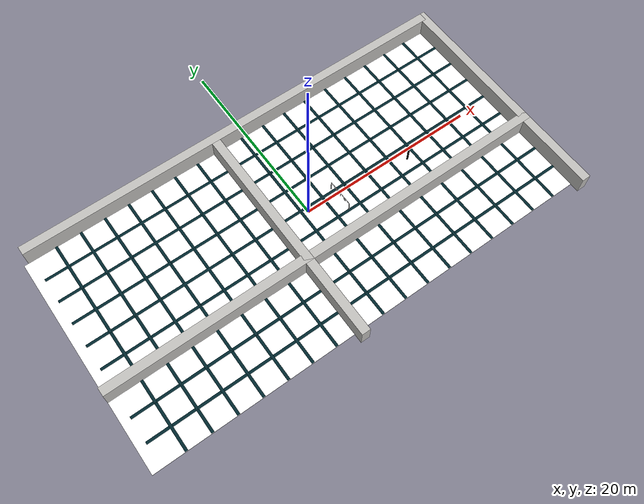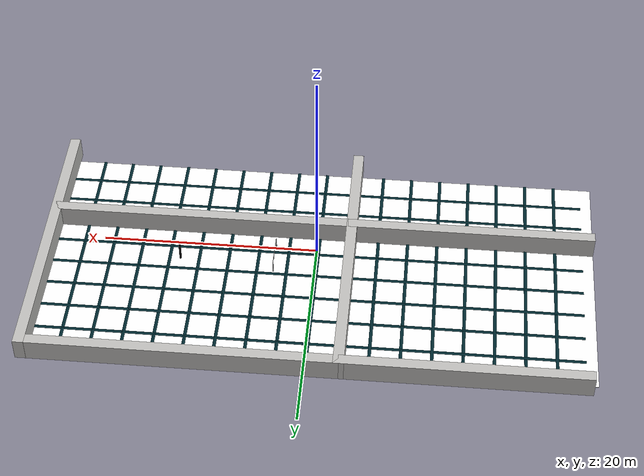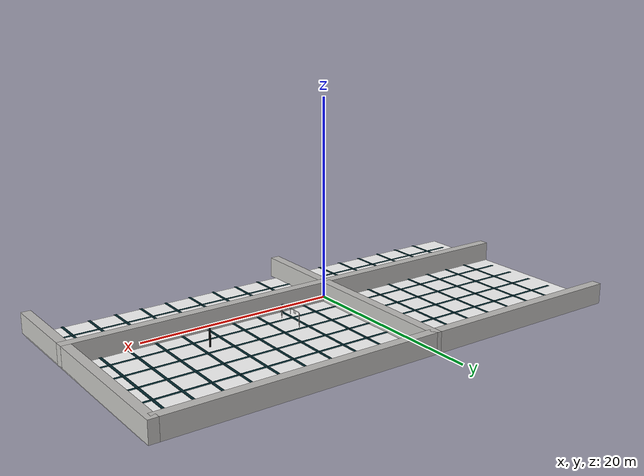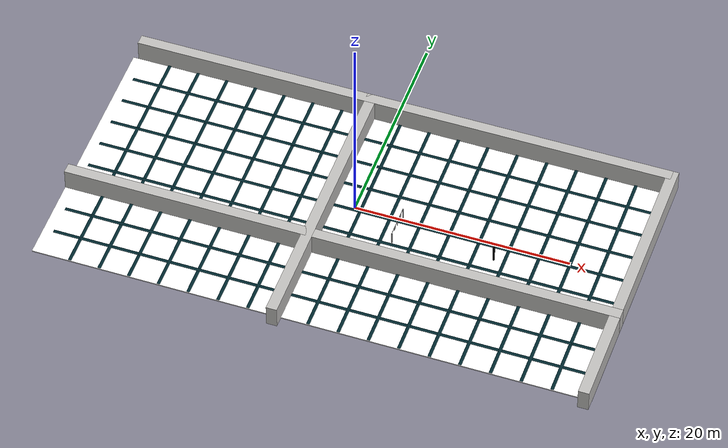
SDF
<?xml version="1.0" ?>
<sdf version="1.6">
  <world name="prequal_world">

    <!-- Configure the scene -->
    <scene>
      <!-- For turquoise ambient -->
      <ambient>0.0 1 1</ambient>
      <background>0.0 0.7 0.8</background>
    </scene>

    <!-- Configure the world physics -->
    <physics name="1ms" type="bullet">
      <max_step_size>0.001</max_step_size>
      <real_time_factor>1.0</real_time_factor>
    </physics>
    <plugin
      filename="gz-sim-physics-system"
      name="gz::sim::systems::Physics">
    </plugin>
    <plugin
      filename="gz-sim-sensors-system"
      name="gz::sim::systems::Sensors">
      <render_engine>ogre2</render_engine>
    </plugin>
    <plugin
      filename="gz-sim-user-commands-system"
      name="gz::sim::systems::UserCommands">
    </plugin>
    <plugin
      filename="gz-sim-scene-broadcaster-system"
      name="gz::sim::systems::SceneBroadcaster">
    </plugin>
    <plugin
      filename="gz-sim-buoyancy-system"
      name="gz::sim::systems::Buoyancy">
      <uniform_fluid_density>1025</uniform_fluid_density>
    </plugin>
    <plugin filename="gz-sim-imu-system"
            name="gz::sim::systems::Imu">
    </plugin>
    <plugin
      filename="gz-sim-air-pressure-system"
      name="gz::sim::systems::AirPressure">
    </plugin>

    <!-- Configure the GUI -->
    <gui>
      <!-- For some reason this is required to get the GUI to render the scene ambient/background -->
      <plugin filename="MinimalScene" name="3D View">
        <gz-gui>
          <title>3D View</title>
          <property type="bool" key="showTitleBar">false</property>
          <property type="string" key="state">docked</property>
        </gz-gui>

        <engine>ogre2</engine>
        <scene>scene</scene>
        <ambient>0.0 1.0 1.0</ambient>
        <background_color>0.0 0.7 0.8</background_color>
      </plugin>

      <!-- Plugins that add functionality to the scene (these got removed when using the MinimalScene Plugin so we have to re-add them-->
      <plugin filename="EntityContextMenuPlugin" name="Entity context menu">
        <gz-gui>
          <property key="state" type="string">floating</property>
          <property key="width" type="double">5</property>
          <property key="height" type="double">5</property>
          <property key="showTitleBar" type="bool">false</property>
        </gz-gui>
      </plugin>
      <plugin filename="GzSceneManager" name="Scene Manager">
        <gz-gui>
          <property key="resizable" type="bool">false</property>
          <property key="width" type="double">5</property>
          <property key="height" type="double">5</property>
          <property key="state" type="string">floating</property>
          <property key="showTitleBar" type="bool">false</property>
        </gz-gui>
      </plugin>
      <plugin filename="InteractiveViewControl" name="Interactive view control">
        <gz-gui>
          <property key="resizable" type="bool">false</property>
          <property key="width" type="double">5</property>
          <property key="height" type="double">5</property>
          <property key="state" type="string">floating</property>
          <property key="showTitleBar" type="bool">false</property>
        </gz-gui>
      </plugin>
      <plugin filename="CameraTracking" name="Camera Tracking">
        <gz-gui>
          <property key="resizable" type="bool">false</property>
          <property key="width" type="double">5</property>
          <property key="height" type="double">5</property>
          <property key="state" type="string">floating</property>
          <property key="showTitleBar" type="bool">false</property>
        </gz-gui>
      </plugin>

      <plugin filename="Spawn" name="Spawn Entities">
        <gz-gui>
          <property key="resizable" type="bool">false</property>
          <property key="width" type="double">5</property>
          <property key="height" type="double">5</property>
          <property key="state" type="string">floating</property>
          <property key="showTitleBar" type="bool">false</property>
        </gz-gui>
      </plugin>

      <!-- World control -->
      <plugin filename="WorldControl" name="World control">
        <gz-gui>
          <title>World control</title>
          <property type="bool" key="showTitleBar">false</property>
          <property type="bool" key="resizable">false</property>
          <property type="double" key="height">72</property>
          <property type="double" key="z">1</property>

          <property type="string" key="state">floating</property>
          <anchors target="3D View">
            <line own="left" target="left"/>
            <line own="bottom" target="bottom"/>
          </anchors>
        </gz-gui>

        <play_pause>true</play_pause>
        <step>true</step>
        <start_paused>true</start_paused>
        <use_event>true</use_event>

      </plugin>

      <!-- World statistics -->
      <plugin filename="WorldStats" name="World stats">
        <gz-gui>
          <title>World stats</title>
          <property type="bool" key="showTitleBar">false</property>
          <property type="bool" key="resizable">false</property>
          <property type="double" key="height">110</property>
          <property type="double" key="width">290</property>
          <property type="double" key="z">1</property>

          <property type="string" key="state">floating</property>
          <anchors target="3D View">
            <line own="right" target="right"/>
            <line own="bottom" target="bottom"/>
          </anchors>
        </gz-gui>

        <sim_time>true</sim_time>
        <real_time>true</real_time>
        <real_time_factor>true</real_time_factor>
        <iterations>true</iterations>
      </plugin>

      <!-- Insert simple shapes -->
      <plugin filename="Shapes" name="Shapes">
        <gz-gui>
          <property key="resizable" type="bool">false</property>
          <property key="x" type="double">0</property>
          <property key="y" type="double">0</property>
          <property key="width" type="double">250</property>
          <property key="height" type="double">50</property>
          <property key="state" type="string">floating</property>
          <property key="showTitleBar" type="bool">false</property>
          <property key="cardBackground" type="string">#666666</property>
        </gz-gui>
      </plugin>

      <!-- Inspector -->
      <plugin filename="ComponentInspector" name="Component inspector">
        <gz-gui>
          <property type="string" key="state">docked</property>
        </gz-gui>
      </plugin>

      <!-- Entity tree -->
      <plugin filename="EntityTree" name="Entity tree">
        <gz-gui>
          <property type="string" key="state">docked</property>
        </gz-gui>
      </plugin>

      <!-- Translate/Rotate Tools -->
      <plugin filename="TransformControl" name="Transform control">
        <gz-gui>
          <property key="resizable" type="bool">false</property>
          <property key="x" type="double">0</property>
          <property key="y" type="double">50</property>
          <property key="width" type="double">250</property>
          <property key="height" type="double">50</property>
          <property key="state" type="string">floating</property>
          <property key="showTitleBar" type="bool">false</property>
          <property key="cardBackground" type="string">#777777</property>
        </gz-gui>
      </plugin>
    </gui>

    <!-- 3D MODELS -->

    <model name='long_wall_1'>
      <pose>0 -4 -1.0668 0 0 0</pose>
      <link name='box_link'>
        <inertial>
          <inertia>
            <ixx>0.16666</ixx>
            <ixy>0</ixy>
            <ixz>0</ixz>
            <iyy>0.16666</iyy>
            <iyz>0</iyz>
            <izz>0.16666</izz>
          </inertia>
          <mass>1</mass>
          <pose>0 0 0 0 0 0</pose>
        </inertial>
        <collision name='box_collision'>
          <geometry>
            <box>
              <size>52 1 2.1336</size>
            </box>
          </geometry>
          <surface>
            <friction>
              <bullet/>
            </friction>
            <bounce/>
            <contact/>
          </surface>
        </collision>
        <visual name='box_visual'>
          <geometry>
            <box>
              <size>52 1 2.1336</size>
            </box>
          </geometry>
          <material>
            <ambient>0.753, 0.749, 0.737 1</ambient>
            <diffuse>0.753, 0.749, 0.737 1</diffuse>
            <specular>0.753, 0.749, 0.737 1</specular>
          </material>
        </visual>
        <pose>0 0 0 0 0 0</pose>
        <enable_wind>false</enable_wind>
      </link>
      <static>true</static>
      <self_collide>false</self_collide>
    </model>
    <model name='long_wall_2'>
      <pose>0 13 -1.0668 0 0 0</pose>
      <link name='box_link'>
        <inertial>
          <inertia>
            <ixx>0.16666</ixx>
            <ixy>0</ixy>
            <ixz>0</ixz>
            <iyy>0.16666</iyy>
            <iyz>0</iyz>
            <izz>0.16666</izz>
          </inertia>
          <mass>1</mass>
          <pose>0 0 0 0 0 0</pose>
        </inertial>
        <collision name='box_collision'>
          <geometry>
            <box>
              <size>51 1 2.1336</size>
            </box>
          </geometry>
          <surface>
            <friction>
              <ode/>
            </friction>
            <bounce/>
            <contact/>
          </surface>
        </collision>
        <visual name='box_visual'>
          <geometry>
            <box>
              <size>51 1 2.1336</size>
            </box>
          </geometry>
          <material>
            <ambient>0.753, 0.749, 0.737 1</ambient>
            <diffuse>0.753, 0.749, 0.737 1</diffuse>
            <specular>0.753, 0.749, 0.737 1</specular>
          </material>
        </visual>
        <pose>0 0 0 0 0 0</pose>
        <enable_wind>false</enable_wind>
      </link>
      <static>true</static>
      <self_collide>false</self_collide>
    </model>
    <model name='wide_wall_1'>
      <pose>25.5 0 -1.0668 0 0 1.57</pose>
      <link name='box_link'>
        <inertial>
          <inertia>
            <ixx>0.16666</ixx>
            <ixy>0</ixy>
            <ixz>0</ixz>
            <iyy>0.16666</iyy>
            <iyz>0</iyz>
            <izz>0.16666</izz>
          </inertia>
          <mass>1</mass>
          <pose>0 0 0 0 0 0</pose>
        </inertial>
        <collision name='box_collision'>
          <geometry>
            <box>
              <size>27 1 2.1336</size>
            </box>
          </geometry>
          <surface>
            <friction>
              <bullet/>
            </friction>
            <bounce/>
            <contact/>
          </surface>
        </collision>
        <visual name='box_visual'>
          <geometry>
            <box>
              <size>27 1 2.1336</size>
            </box>
          </geometry>
          <material>
            <ambient>0.753, 0.749, 0.737 1</ambient>
            <diffuse>0.753, 0.749, 0.737 1</diffuse>
            <specular>0.753, 0.749, 0.737 1</specular>
          </material>
        </visual>
        <pose>0 0 0 0 0 0</pose>
        <enable_wind>false</enable_wind>
      </link>
      <static>true</static>
      <self_collide>false</self_collide>
    </model>
    <model name='wide_wall_2'>
      <pose>-3 0 -1.0668 0 0 1.57</pose>
      <link name='box_link'>
        <inertial>
          <inertia>
            <ixx>0.16666</ixx>
            <ixy>0</ixy>
            <ixz>0</ixz>
            <iyy>0.16666</iyy>
            <iyz>0</iyz>
            <izz>0.16666</izz>
          </inertia>
          <mass>1</mass>
          <pose>0 0 0 0 0 0</pose>
        </inertial>
        <collision name='box_collision'>
          <geometry>
            <box>
              <size>27 1 2.1336</size>
            </box>
          </geometry>
          <surface>
            <friction>
              <bullet/>
            </friction>
            <bounce/>
            <contact/>
          </surface>
        </collision>
        <visual name='box_visual'>
          <geometry>
            <box>
              <size>27 1 2.1336</size>
            </box>
          </geometry>
          <material>
            <ambient>0.753, 0.749, 0.737 1</ambient>
            <diffuse>0.753, 0.749, 0.737 1</diffuse>
            <specular>0.753, 0.749, 0.737 1</specular>
          </material>
        </visual>
        <pose>0 0 0 0 0 0</pose>
        <enable_wind>false</enable_wind>
      </link>
      <static>true</static>
      <self_collide>false</self_collide>
    </model>

    <model name='floor'>
      <pose>0 0 -2.1336 0 0 0</pose>
      <link name='box_link'>
        <inertial>
          <inertia>
            <ixx>0.16666</ixx>
            <ixy>0</ixy>
            <ixz>0</ixz>
            <iyy>0.16666</iyy>
            <iyz>0</iyz>
            <izz>0.16666</izz>
          </inertia>
          <mass>1</mass>
          <pose>0 0 0 0 0 0</pose>
        </inertial>
        <collision name='box_collision'>
          <geometry>
            <box>
              <size>52 25 0.1</size>
            </box>
          </geometry>
          <surface>
            <friction>
              <bullet/>
            </friction>
            <bounce/>
            <contact/>
          </surface>
        </collision>
        <visual name='box_visual'>
          <geometry>
            <box>
              <size>52 25 0.1</size>
            </box>
          </geometry>
          <material>
              <ambient>1 1 1 1</ambient>  <!-- Pure white ambient color -->
              <diffuse>1 1 1 1</diffuse>  <!-- Pure white diffuse color -->
              <specular>1 1 1 1</specular>  <!-- Pure white specular color -->
          </material>
        </visual>
        <pose>0 0 0 0 0 0</pose>
        <enable_wind>false</enable_wind>
      </link>
      <static>true</static>
      <self_collide>false</self_collide>
    </model>

    <model name='lane1'>
      <pose>-22.4 0 -2 0 0 0</pose>
      <link name='box_link'>
        <inertial>
          <inertia>
            <ixx>0.16666</ixx>
            <ixy>0</ixy>
            <ixz>0</ixz>
            <iyy>0.16666</iyy>
            <iyz>0</iyz>
            <izz>0.16666</izz>
          </inertia>
          <mass>1</mass>
          <pose>0 0 0 0 0 0</pose>
        </inertial>
        <visual name='box_visual'>
          <geometry>
            <box>
              <size>.3 25 .01</size>
            </box>
          </geometry>
          <material>
            <ambient>0, 0.153, 0.18, 1</ambient>
            <diffuse>0, 0.153, 0.18, 1</diffuse>
            <specular>0, 0.153, 0.18, 1</specular>
          </material>
        </visual>
        <pose>0 0 0 0 0 0</pose>
        <enable_wind>false</enable_wind>
      </link>
      <static>true</static>
      <self_collide>false</self_collide>
    </model>

    <model name='lane2'>
      <pose>-19.6 0 -2 0 0 0</pose>
      <link name='box_link'>
        <inertial>
          <inertia>
            <ixx>0.16666</ixx>
            <ixy>0</ixy>
            <ixz>0</ixz>
            <iyy>0.16666</iyy>
            <iyz>0</iyz>
            <izz>0.16666</izz>
          </inertia>
          <mass>1</mass>
          <pose>0 0 0 0 0 0</pose>
        </inertial>
        <visual name='box_visual'>
          <geometry>
            <box>
              <size>.3 25 .01</size>
            </box>
          </geometry>
          <material>
            <ambient>0, 0.153, 0.18, 1</ambient>
            <diffuse>0, 0.153, 0.18, 1</diffuse>
            <specular>0, 0.153, 0.18, 1</specular>
          </material>
        </visual>
        <pose>0 0 0 0 0 0</pose>
        <enable_wind>false</enable_wind>
      </link>
      <static>true</static>
      <self_collide>false</self_collide>
    </model>

    <model name='lane3'>
      <pose>-16.8 0 -2 0 0 0</pose>
      <link name='box_link'>
        <inertial>
          <inertia>
            <ixx>0.16666</ixx>
            <ixy>0</ixy>
            <ixz>0</ixz>
            <iyy>0.16666</iyy>
            <iyz>0</iyz>
            <izz>0.16666</izz>
          </inertia>
          <mass>1</mass>
          <pose>0 0 0 0 0 0</pose>
        </inertial>
        <visual name='box_visual'>
          <geometry>
            <box>
              <size>.3 25 .01</size>
            </box>
          </geometry>
          <material>
            <ambient>0, 0.153, 0.18, 1</ambient>
            <diffuse>0, 0.153, 0.18, 1</diffuse>
            <specular>0, 0.153, 0.18, 1</specular>
          </material>
        </visual>
        <pose>0 0 0 0 0 0</pose>
        <enable_wind>false</enable_wind>
      </link>
      <static>true</static>
      <self_collide>false</self_collide>
    </model>

    <model name='lane4'>
      <pose>-14 0 -2 0 0 0</pose>
      <link name='box_link'>
        <inertial>
          <inertia>
            <ixx>0.16666</ixx>
            <ixy>0</ixy>
            <ixz>0</ixz>
            <iyy>0.16666</iyy>
            <iyz>0</iyz>
            <izz>0.16666</izz>
          </inertia>
          <mass>1</mass>
          <pose>0 0 0 0 0 0</pose>
        </inertial>
        <visual name='box_visual'>
          <geometry>
            <box>
              <size>.3 25 .01</size>
            </box>
          </geometry>
          <material>
            <ambient>0, 0.153, 0.18, 1</ambient>
            <diffuse>0, 0.153, 0.18, 1</diffuse>
            <specular>0, 0.153, 0.18, 1</specular>
          </material>
        </visual>
        <pose>0 0 0 0 0 0</pose>
        <enable_wind>false</enable_wind>
      </link>
      <static>true</static>
      <self_collide>false</self_collide>
    </model>

    <model name='lane5'>
      <pose>-11.2 0 -2 0 0 0</pose>
      <link name='box_link'>
        <inertial>
          <inertia>
            <ixx>0.16666</ixx>
            <ixy>0</ixy>
            <ixz>0</ixz>
            <iyy>0.16666</iyy>
            <iyz>0</iyz>
            <izz>0.16666</izz>
          </inertia>
          <mass>1</mass>
          <pose>0 0 0 0 0 0</pose>
        </inertial>
        <visual name='box_visual'>
          <geometry>
            <box>
              <size>.3 25 .01</size>
            </box>
          </geometry>
          <material>
            <ambient>0, 0.153, 0.18, 1</ambient>
            <diffuse>0, 0.153, 0.18, 1</diffuse>
            <specular>0, 0.153, 0.18, 1</specular>
          </material>
        </visual>
        <pose>0 0 0 0 0 0</pose>
        <enable_wind>false</enable_wind>
      </link>
      <static>true</static>
      <self_collide>false</self_collide>
    </model>

    <model name='lane6'>
      <pose>-8.4 0 -2 0 0 0</pose>
      <link name='box_link'>
        <inertial>
          <inertia>
            <ixx>0.16666</ixx>
            <ixy>0</ixy>
            <ixz>0</ixz>
            <iyy>0.16666</iyy>
            <iyz>0</iyz>
            <izz>0.16666</izz>
          </inertia>
          <mass>1</mass>
          <pose>0 0 0 0 0 0</pose>
        </inertial>
        <visual name='box_visual'>
          <geometry>
            <box>
              <size>.3 25 .01</size>
            </box>
          </geometry>
          <material>
            <ambient>0, 0.153, 0.18, 1</ambient>
            <diffuse>0, 0.153, 0.18, 1</diffuse>
            <specular>0, 0.153, 0.18, 1</specular>
          </material>
        </visual>
        <pose>0 0 0 0 0 0</pose>
        <enable_wind>false</enable_wind>
      </link>
      <static>true</static>
      <self_collide>false</self_collide>
    </model>

    <model name='lane7'>
      <pose>-5.6 0 -2 0 0 0</pose>
      <link name='box_link'>
        <inertial>
          <inertia>
            <ixx>0.16666</ixx>
            <ixy>0</ixy>
            <ixz>0</ixz>
            <iyy>0.16666</iyy>
            <iyz>0</iyz>
            <izz>0.16666</izz>
          </inertia>
          <mass>1</mass>
          <pose>0 0 0 0 0 0</pose>
        </inertial>
        <visual name='box_visual'>
          <geometry>
            <box>
              <size>.3 25 .01</size>
            </box>
          </geometry>
          <material>
            <ambient>0, 0.153, 0.18, 1</ambient>
            <diffuse>0, 0.153, 0.18, 1</diffuse>
            <specular>0, 0.153, 0.18, 1</specular>
          </material>
        </visual>
        <pose>0 0 0 0 0 0</pose>
        <enable_wind>false</enable_wind>
      </link>
      <static>true</static>
      <self_collide>false</self_collide>
    </model>

    <model name='lane8'>
      <pose>-2.8 0 -2 0 0 0</pose>
      <link name='box_link'>
        <inertial>
          <inertia>
            <ixx>0.16666</ixx>
            <ixy>0</ixy>
            <ixz>0</ixz>
            <iyy>0.16666</iyy>
            <iyz>0</iyz>
            <izz>0.16666</izz>
          </inertia>
          <mass>1</mass>
          <pose>0 0 0 0 0 0</pose>
        </inertial>
        <visual name='box_visual'>
          <geometry>
            <box>
              <size>.3 25 .01</size>
            </box>
          </geometry>
          <material>
            <ambient>0, 0.153, 0.18, 1</ambient>
            <diffuse>0, 0.153, 0.18, 1</diffuse>
            <specular>0, 0.153, 0.18, 1</specular>
          </material>
        </visual>
        <pose>0 0 0 0 0 0</pose>
        <enable_wind>false</enable_wind>
      </link>
      <static>true</static>
      <self_collide>false</self_collide>
    </model>

    <model name='lane9'>
      <pose>0 0 -2 0 0 0</pose>
      <link name='box_link'>
        <inertial>
          <inertia>
            <ixx>0.16666</ixx>
            <ixy>0</ixy>
            <ixz>0</ixz>
            <iyy>0.16666</iyy>
            <iyz>0</iyz>
            <izz>0.16666</izz>
          </inertia>
          <mass>1</mass>
          <pose>0 0 0 0 0 0</pose>
        </inertial>
        <visual name='box_visual'>
          <geometry>
            <box>
              <size>.3 25 .01</size>
            </box>
          </geometry>
          <material>
            <ambient>0, 0.153, 0.18, 1</ambient>
            <diffuse>0, 0.153, 0.18, 1</diffuse>
            <specular>0, 0.153, 0.18, 1</specular>
          </material>
        </visual>
        <pose>0 0 0 0 0 0</pose>
        <enable_wind>false</enable_wind>
      </link>
      <static>true</static>
      <self_collide>false</self_collide>
    </model>

    <model name='lane10'>
      <pose>22.4 0 -2 0 0 0</pose>
      <link name='box_link'>
        <inertial>
          <inertia>
            <ixx>0.16666</ixx>
            <ixy>0</ixy>
            <ixz>0</ixz>
            <iyy>0.16666</iyy>
            <iyz>0</iyz>
            <izz>0.16666</izz>
          </inertia>
          <mass>1</mass>
          <pose>0 0 0 0 0 0</pose>
        </inertial>
        <visual name='box_visual'>
          <geometry>
            <box>
              <size>.3 25 .01</size>
            </box>
          </geometry>
          <material>
            <ambient>0, 0.153, 0.18, 1</ambient>
            <diffuse>0, 0.153, 0.18, 1</diffuse>
            <specular>0, 0.153, 0.18, 1</specular>
          </material>
        </visual>
        <pose>0 0 0 0 0 0</pose>
        <enable_wind>false</enable_wind>
      </link>
      <static>true</static>
      <self_collide>false</self_collide>
    </model>

    <model name='lane11'>
      <pose>19.6 0 -2 0 0 0</pose>
      <link name='box_link'>
        <inertial>
          <inertia>
            <ixx>0.16666</ixx>
            <ixy>0</ixy>
            <ixz>0</ixz>
            <iyy>0.16666</iyy>
            <iyz>0</iyz>
            <izz>0.16666</izz>
          </inertia>
          <mass>1</mass>
          <pose>0 0 0 0 0 0</pose>
        </inertial>
        <visual name='box_visual'>
          <geometry>
            <box>
              <size>.3 25 .01</size>
            </box>
          </geometry>
          <material>
            <ambient>0, 0.153, 0.18, 1</ambient>
            <diffuse>0, 0.153, 0.18, 1</diffuse>
            <specular>0, 0.153, 0.18, 1</specular>
          </material>
        </visual>
        <pose>0 0 0 0 0 0</pose>
        <enable_wind>false</enable_wind>
      </link>
      <static>true</static>
      <self_collide>false</self_collide>
    </model>

    <model name='lane12'>
      <pose>16.8 0 -2 0 0 0</pose>
      <link name='box_link'>
        <inertial>
          <inertia>
            <ixx>0.16666</ixx>
            <ixy>0</ixy>
            <ixz>0</ixz>
            <iyy>0.16666</iyy>
            <iyz>0</iyz>
            <izz>0.16666</izz>
          </inertia>
          <mass>1</mass>
          <pose>0 0 0 0 0 0</pose>
        </inertial>
        <visual name='box_visual'>
          <geometry>
            <box>
              <size>.3 25 .01</size>
            </box>
          </geometry>
          <material>
            <ambient>0, 0.153, 0.18, 1</ambient>
            <diffuse>0, 0.153, 0.18, 1</diffuse>
            <specular>0, 0.153, 0.18, 1</specular>
          </material>
        </visual>
        <pose>0 0 0 0 0 0</pose>
        <enable_wind>false</enable_wind>
      </link>
      <static>true</static>
      <self_collide>false</self_collide>
    </model>

    <model name='lane13'>
      <pose>14 0 -2 0 0 0</pose>
      <link name='box_link'>
        <inertial>
          <inertia>
            <ixx>0.16666</ixx>
            <ixy>0</ixy>
            <ixz>0</ixz>
            <iyy>0.16666</iyy>
            <iyz>0</iyz>
            <izz>0.16666</izz>
          </inertia>
          <mass>1</mass>
          <pose>0 0 0 0 0 0</pose>
        </inertial>
        <visual name='box_visual'>
          <geometry>
            <box>
              <size>.3 25 .01</size>
            </box>
          </geometry>
          <material>
            <ambient>0, 0.153, 0.18, 1</ambient>
            <diffuse>0, 0.153, 0.18, 1</diffuse>
            <specular>0, 0.153, 0.18, 1</specular>
          </material>
        </visual>
        <pose>0 0 0 0 0 0</pose>
        <enable_wind>false</enable_wind>
      </link>
      <static>true</static>
      <self_collide>false</self_collide>
    </model>

    <model name='lane14'>
      <pose>11.2 0 -2 0 0 0</pose>
      <link name='box_link'>
        <inertial>
          <inertia>
            <ixx>0.16666</ixx>
            <ixy>0</ixy>
            <ixz>0</ixz>
            <iyy>0.16666</iyy>
            <iyz>0</iyz>
            <izz>0.16666</izz>
          </inertia>
          <mass>1</mass>
          <pose>0 0 0 0 0 0</pose>
        </inertial>
        <visual name='box_visual'>
          <geometry>
            <box>
              <size>.3 25 .01</size>
            </box>
          </geometry>
          <material>
            <ambient>0, 0.153, 0.18, 1</ambient>
            <diffuse>0, 0.153, 0.18, 1</diffuse>
            <specular>0, 0.153, 0.18, 1</specular>
          </material>
        </visual>
        <pose>0 0 0 0 0 0</pose>
        <enable_wind>false</enable_wind>
      </link>
      <static>true</static>
      <self_collide>false</self_collide>
    </model>

    <model name='lane15'>
      <pose>8.4 0 -2 0 0 0</pose>
      <link name='box_link'>
        <inertial>
          <inertia>
            <ixx>0.16666</ixx>
            <ixy>0</ixy>
            <ixz>0</ixz>
            <iyy>0.16666</iyy>
            <iyz>0</iyz>
            <izz>0.16666</izz>
          </inertia>
          <mass>1</mass>
          <pose>0 0 0 0 0 0</pose>
        </inertial>
        <visual name='box_visual'>
          <geometry>
            <box>
              <size>.3 25 .01</size>
            </box>
          </geometry>
          <material>
            <ambient>0, 0.153, 0.18, 1</ambient>
            <diffuse>0, 0.153, 0.18, 1</diffuse>
            <specular>0, 0.153, 0.18, 1</specular>
          </material>
        </visual>
        <pose>0 0 0 0 0 0</pose>
        <enable_wind>false</enable_wind>
      </link>
      <static>true</static>
      <self_collide>false</self_collide>
    </model>

    <model name='lane16'>
      <pose>5.6 0 -2 0 0 0</pose>
      <link name='box_link'>
        <inertial>
          <inertia>
            <ixx>0.16666</ixx>
            <ixy>0</ixy>
            <ixz>0</ixz>
            <iyy>0.16666</iyy>
            <iyz>0</iyz>
            <izz>0.16666</izz>
          </inertia>
          <mass>1</mass>
          <pose>0 0 0 0 0 0</pose>
        </inertial>
        <visual name='box_visual'>
          <geometry>
            <box>
              <size>.3 25 .01</size>
            </box>
          </geometry>
          <material>
            <ambient>0, 0.153, 0.18, 1</ambient>
            <diffuse>0, 0.153, 0.18, 1</diffuse>
            <specular>0, 0.153, 0.18, 1</specular>
          </material>
        </visual>
        <pose>0 0 0 0 0 0</pose>
        <enable_wind>false</enable_wind>
      </link>
      <static>true</static>
      <self_collide>false</self_collide>
    </model>

    <model name='lane17'>
      <pose>2.8 0 -2 0 0 0</pose>
      <link name='box_link'>
        <inertial>
          <inertia>
            <ixx>0.16666</ixx>
            <ixy>0</ixy>
            <ixz>0</ixz>
            <iyy>0.16666</iyy>
            <iyz>0</iyz>
            <izz>0.16666</izz>
          </inertia>
          <mass>1</mass>
          <pose>0 0 0 0 0 0</pose>
        </inertial>
        <visual name='box_visual'>
          <geometry>
            <box>
              <size>.3 25 .01</size>
            </box>
          </geometry>
          <material>
            <ambient>0, 0.153, 0.18, 1</ambient>
            <diffuse>0, 0.153, 0.18, 1</diffuse>
            <specular>0, 0.153, 0.18, 1</specular>
          </material>
        </visual>
        <pose>0 0 0 0 0 0</pose>
        <enable_wind>false</enable_wind>
      </link>
      <static>true</static>
      <self_collide>false</self_collide>
    </model>

    <model name='lane18'>
      <pose>0 1.4 -2 0 0 1.57</pose>
      <link name='box_link'>
        <inertial>
          <inertia>
            <ixx>0.16666</ixx>
            <ixy>0</ixy>
            <ixz>0</ixz>
            <iyy>0.16666</iyy>
            <iyz>0</iyz>
            <izz>0.16666</izz>
          </inertia>
          <mass>1</mass>
          <pose>0 0 0 0 0 0</pose>
        </inertial>
        <visual name='box_visual'>
          <geometry>
            <box>
              <size>.3 50 .01</size>
            </box>
          </geometry>
          <material>
            <ambient>0, 0.153, 0.18, 1</ambient>
            <diffuse>0, 0.153, 0.18, 1</diffuse>
            <specular>0, 0.153, 0.18, 1</specular>
          </material>
        </visual>
        <pose>0 0 0 0 0 0</pose>
        <enable_wind>false</enable_wind>
      </link>
      <static>true</static>
      <self_collide>false</self_collide>
    </model>

    <model name='lane19'>
      <pose>0 4.2 -2 0 0 1.57</pose>
      <link name='box_link'>
        <inertial>
          <inertia>
            <ixx>0.16666</ixx>
            <ixy>0</ixy>
            <ixz>0</ixz>
            <iyy>0.16666</iyy>
            <iyz>0</iyz>
            <izz>0.16666</izz>
          </inertia>
          <mass>1</mass>
          <pose>0 0 0 0 0 0</pose>
        </inertial>
        <visual name='box_visual'>
          <geometry>
            <box>
              <size>.3 50 .01</size>
            </box>
          </geometry>
          <material>
            <ambient>0, 0.153, 0.18, 1</ambient>
            <diffuse>0, 0.153, 0.18, 1</diffuse>
            <specular>0, 0.153, 0.18, 1</specular>
          </material>
        </visual>
        <pose>0 0 0 0 0 0</pose>
        <enable_wind>false</enable_wind>
      </link>
      <static>true</static>
      <self_collide>false</self_collide>
    </model>

    <model name='lane20'>
      <pose>0 7 -2 0 0 1.57</pose>
      <link name='box_link'>
        <inertial>
          <inertia>
            <ixx>0.16666</ixx>
            <ixy>0</ixy>
            <ixz>0</ixz>
            <iyy>0.16666</iyy>
            <iyz>0</iyz>
            <izz>0.16666</izz>
          </inertia>
          <mass>1</mass>
          <pose>0 0 0 0 0 0</pose>
        </inertial>
        <visual name='box_visual'>
          <geometry>
            <box>
              <size>.3 50 .01</size>
            </box>
          </geometry>
          <material>
            <ambient>0, 0.153, 0.18, 1</ambient>
            <diffuse>0, 0.153, 0.18, 1</diffuse>
            <specular>0, 0.153, 0.18, 1</specular>
          </material>
        </visual>
        <pose>0 0 0 0 0 0</pose>
        <enable_wind>false</enable_wind>
      </link>
      <static>true</static>
      <self_collide>false</self_collide>
    </model>

    <model name='lane21'>
      <pose>0 9.8 -2 0 0 1.57</pose>
      <link name='box_link'>
        <inertial>
          <inertia>
            <ixx>0.16666</ixx>
            <ixy>0</ixy>
            <ixz>0</ixz>
            <iyy>0.16666</iyy>
            <iyz>0</iyz>
            <izz>0.16666</izz>
          </inertia>
          <mass>1</mass>
          <pose>0 0 0 0 0 0</pose>
        </inertial>
        <visual name='box_visual'>
          <geometry>
            <box>
              <size>.3 50 .01</size>
            </box>
          </geometry>
          <material>
            <ambient>0, 0.153, 0.18, 1</ambient>
            <diffuse>0, 0.153, 0.18, 1</diffuse>
            <specular>0, 0.153, 0.18, 1</specular>
          </material>
        </visual>
        <pose>0 0 0 0 0 0</pose>
        <enable_wind>false</enable_wind>
      </link>
      <static>true</static>
      <self_collide>false</self_collide>
    </model>

    <model name='lane22'>
      <pose>0 -1.4 -2 0 0 1.57</pose>
      <link name='box_link'>
        <inertial>
          <inertia>
            <ixx>0.16666</ixx>
            <ixy>0</ixy>
            <ixz>0</ixz>
            <iyy>0.16666</iyy>
            <iyz>0</iyz>
            <izz>0.16666</izz>
          </inertia>
          <mass>1</mass>
          <pose>0 0 0 0 0 0</pose>
        </inertial>
        <visual name='box_visual'>
          <geometry>
            <box>
              <size>.3 50 .01</size>
            </box>
          </geometry>
          <material>
            <ambient>0, 0.153, 0.18, 1</ambient>
            <diffuse>0, 0.153, 0.18, 1</diffuse>
            <specular>0, 0.153, 0.18, 1</specular>
          </material>
        </visual>
        <pose>0 0 0 0 0 0</pose>
        <enable_wind>false</enable_wind>
      </link>
      <static>true</static>
      <self_collide>false</self_collide>
    </model>

    <model name='lane23'>
      <pose>0 -4.2 -2 0 0 1.57</pose>
      <link name='box_link'>
        <inertial>
          <inertia>
            <ixx>0.16666</ixx>
            <ixy>0</ixy>
            <ixz>0</ixz>
            <iyy>0.16666</iyy>
            <iyz>0</iyz>
            <izz>0.16666</izz>
          </inertia>
          <mass>1</mass>
          <pose>0 0 0 0 0 0</pose>
        </inertial>
        <visual name='box_visual'>
          <geometry>
            <box>
              <size>.3 50 .01</size>
            </box>
          </geometry>
          <material>
            <ambient>0, 0.153, 0.18, 1</ambient>
            <diffuse>0, 0.153, 0.18, 1</diffuse>
            <specular>0, 0.153, 0.18, 1</specular>
          </material>
        </visual>
        <pose>0 0 0 0 0 0</pose>
        <enable_wind>false</enable_wind>
      </link>
      <static>true</static>
      <self_collide>false</self_collide>
    </model>

    <model name='lane24'>
      <pose>0 -7 -2 0 0 1.57</pose>
      <link name='box_link'>
        <inertial>
          <inertia>
            <ixx>0.16666</ixx>
            <ixy>0</ixy>
            <ixz>0</ixz>
            <iyy>0.16666</iyy>
            <iyz>0</iyz>
            <izz>0.16666</izz>
          </inertia>
          <mass>1</mass>
          <pose>0 0 0 0 0 0</pose>
        </inertial>
        <visual name='box_visual'>
          <geometry>
            <box>
              <size>.3 50 .01</size>
            </box>
          </geometry>
          <material>
            <ambient>0, 0.153, 0.18, 1</ambient>
            <diffuse>0, 0.153, 0.18, 1</diffuse>
            <specular>0, 0.153, 0.18, 1</specular>
          </material>
        </visual>
        <pose>0 0 0 0 0 0</pose>
        <enable_wind>false</enable_wind>
      </link>
      <static>true</static>
      <self_collide>false</self_collide>
    </model>

    <model name='lane25'>
      <pose>0 -9.8 -2 0 0 1.57</pose>
      <link name='box_link'>
        <inertial>
          <inertia>
            <ixx>0.16666</ixx>
            <ixy>0</ixy>
            <ixz>0</ixz>
            <iyy>0.16666</iyy>
            <iyz>0</iyz>
            <izz>0.16666</izz>
          </inertia>
          <mass>1</mass>
          <pose>0 0 0 0 0 0</pose>
        </inertial>
        <visual name='box_visual'>
          <geometry>
            <box>
              <size>.3 50 .01</size>
            </box>
          </geometry>
          <material>
            <ambient>0, 0.153, 0.18, 1</ambient>
            <diffuse>0, 0.153, 0.18, 1</diffuse>
            <specular>0, 0.153, 0.18, 1</specular>
          </material>
        </visual>
        <pose>0 0 0 0 0 0</pose>
        <enable_wind>false</enable_wind>
      </link>
      <static>true</static>
      <self_collide>false</self_collide>
    </model>

    <!-- TASKS -->
    <!-- GATE TASK -->
    <include>
      <uri>Gate</uri>
      <pose>4 0.0 -1.8 0 3.14 1.57</pose>
    </include>

    <model name='prequal_marker'>
      <pose>13 0 -1.2 0 0 0</pose>
      <link name='marker_cylinder'>
        <inertial>
          <inertia>
            <ixx>0.16666</ixx>
            <ixy>0</ixy>
            <ixz>0</ixz>
            <iyy>0.16666</iyy>
            <iyz>0</iyz>
            <izz>0.16666</izz>
          </inertia>
          <mass>1</mass>
          <pose>0 0 0 0 0 0</pose>
        </inertial>
        <visual name='marker_cylinder_visual'>
          <geometry>
            <cylinder>
                <radius>0.1</radius>
                <length>2.5</length>
            </cylinder>
          </geometry>
          <material>
            <ambient>0.0, 0.0, 0.0, 1</ambient>
            <diffuse>0.0, 0.0, 0.0, 1</diffuse>
            <specular>0.0, 0.0, 0.0, 1</specular>
          </material>
        </visual>
        <pose>0 0 0 0 0 0</pose>
        <enable_wind>false</enable_wind>
      </link>
      <static>true</static>
      <self_collide>false</self_collide>
    </model>

  </world>
</sdf>

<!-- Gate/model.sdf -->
<sdf version="1.10">
    <model name="Gate">
        <cast_shadows>false</cast_shadows>
        <link name="link">
            <cast_shadows>false</cast_shadows>
            <collision name="collision">
                <geometry>
                    <mesh>
                        <uri>meshes/Robosubgate2025.obj</uri>
                        <scale>1 1 1</scale>
                    </mesh>
                </geometry>
            </collision>

            <visual name="visual">
                <geometry>
                    <mesh>
                        <uri>meshes/Robosubgate2025.obj</uri>
                        <scale>1 1 1</scale>
                    </mesh>
                </geometry>
                <cast_shadows>false</cast_shadows>
            </visual>
        </link>
        <static>true</static>
    </model>
</sdf>
